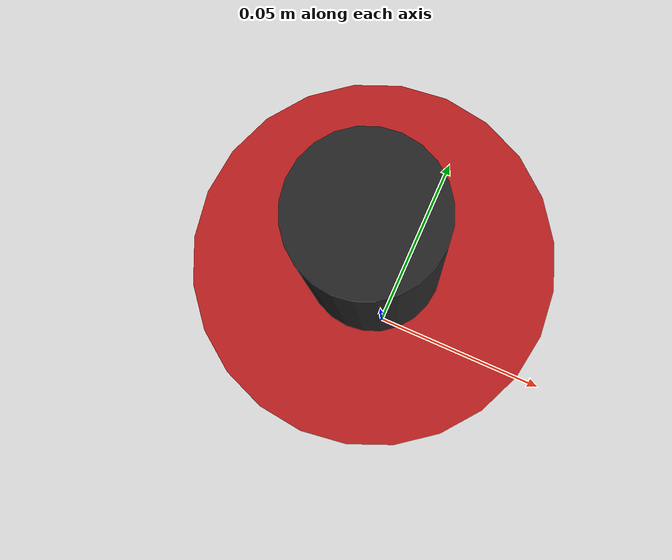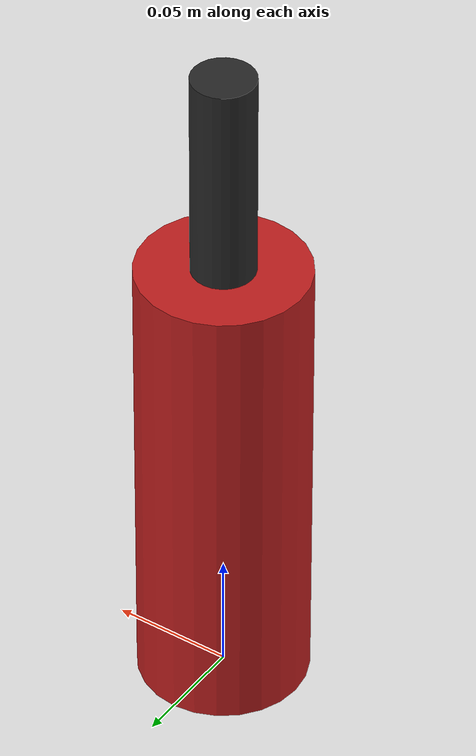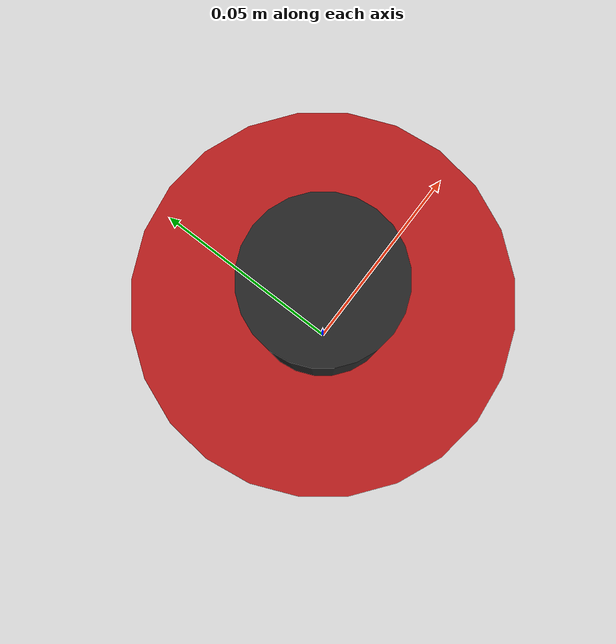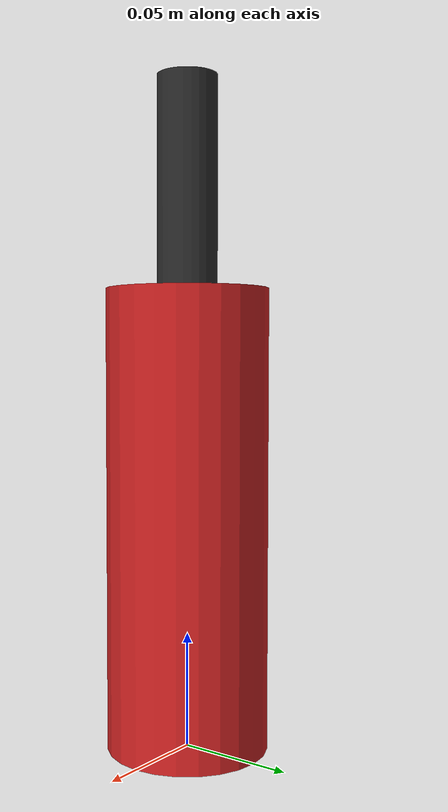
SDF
<?xml version="1.0" ?>
<!-- GENERATED by bartender_gazebo/scripts/make_bartender_scene.py; tall slim debug bottle.
     Edit the generator, not this file. Colors are debug aids only. -->
<sdf version="1.9">
  <model name="debug_bottle_red">
    <!-- Link origin is the centre of the bottle's base, like the whiskey
         and cola models, so a standing pose is always z = table top. -->
    <link name="body">
      <inertial>
        <pose>0 0 0.1 0 0 0</pose>
        <mass>0.45</mass>
        <inertia>
          <ixx>1.637813e-03</ixx>
          <iyy>1.637813e-03</iyy>
          <izz>2.756250e-04</izz>
          <ixy>0</ixy>
          <ixz>0</ixz>
          <iyz>0</iyz>
        </inertia>
      </inertial>
      <collision name="body_collision">
        <pose>0 0 0.1 0 0 0</pose>
        <geometry>
          <cylinder>
            <radius>0.035</radius>
            <length>0.2</length>
          </cylinder>
        </geometry>
        <surface>
          <friction>
            <ode>
              <mu>0.9</mu>
              <mu2>0.9</mu2>
            </ode>
          </friction>
        </surface>
      </collision>
      <visual name="body_visual">
        <pose>0 0 0.1 0 0 0</pose>
        <geometry>
          <cylinder>
            <radius>0.035</radius>
            <length>0.2</length>
          </cylinder>
        </geometry>
        <material>
          <ambient>0.75 0.12 0.12 1</ambient>
          <diffuse>0.75 0.12 0.12 1</diffuse>
          <specular>0.2 0.2 0.2 0.3</specular>
        </material>
      </visual>
      <collision name="neck_collision">
        <pose>0 0 0.245 0 0 0</pose>
        <geometry>
          <cylinder>
            <radius>0.013</radius>
            <length>0.09</length>
          </cylinder>
        </geometry>
        <surface>
          <friction>
            <ode>
              <mu>0.9</mu>
              <mu2>0.9</mu2>
            </ode>
          </friction>
        </surface>
      </collision>
      <visual name="neck_visual">
        <pose>0 0 0.245 0 0 0</pose>
        <geometry>
          <cylinder>
            <radius>0.013</radius>
            <length>0.09</length>
          </cylinder>
        </geometry>
        <material>
          <ambient>0.15 0.15 0.15 1</ambient>
          <diffuse>0.15 0.15 0.15 1</diffuse>
          <specular>0.3 0.3 0.3 0.3</specular>
        </material>
      </visual>
    </link>
  </model>
</sdf>
